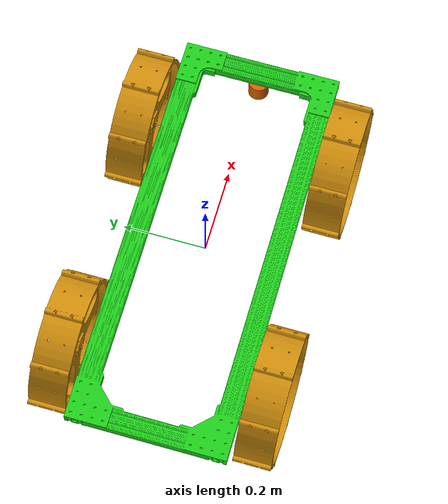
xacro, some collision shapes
<?xml version="1.0"?>
<robot xmlns:xacro="http://www.ros.org/wiki/xacro" name="moony">

<gazebo>
    <plugin name="gazebo_ros_control" filename="libgazebo_ros_control.so">
        <robotNamespace>/moony</robotNamespace>
    </plugin>
</gazebo>

<!-- CONSTANTS -->
<xacro:property name="base_mass" value="4.11" />
<xacro:property name="base_height" value=".03" />
<xacro:property name="wheel_mass" value="2" />
<xacro:property name="wheel_x" value="0.3" />
<xacro:property name="wheel_y" value="${(.38/2)+.04+.01}" />
<!-- y = width/2 of frame + wheel COG to wall + buffer -->
<!-- for XACRO math - SPACES matter -->
<xacro:property name="wheel_z" value="${-0.02 - base_height/2}" />
<xacro:property name="wheel_r" value="${radians(90)}" />
<xacro:property name="wheel_p" value="0" />
<xacro:property name="wheel_y" value="0" />
<xacro:property name="wheel_inertia_ixx" value="0.02" />
<xacro:property name="wheel_inertia_iyy" value="0.02" />
<xacro:property name="wheel_inertia_izz" value="0.04" />
<xacro:property name="wheel_collision_radius" value="0.17" />
<xacro:property name="wheel_collision_length" value="0.09" />
<xacro:property name="wheel_mesh" value="package://moony_description/models/meshes/wheel.dae" />
<xacro:property name="wheel_effort" value="0.1" />
<xacro:property name="wheel_velocity" value="1" />
<xacro:property name="wheel_static_contact_stiffness" value="100000" />
<xacro:property name="wheel_dynamic_contact_stiffness" value="100000" />
<xacro:property name="wheel_static_friction_coeff" value="10" />
<xacro:property name="wheel_dynamic_friction_coeff" value="10" />

<!-- IMPORTS -->
<!-- Import all Gazebo-customization elements, including Gazebo colors -->
  <!-- THIS DID NOT WORK - however it would appear to be -->
  <!-- Import Rviz colors -->

<!-- MACROS -->
<xacro:macro name="individual_wheel" params="num x y r">
   <link name="wheel_${num}_link">
        <inertial>
            <origin rpy="0 0 0" xyz="0 0 0"/>
            <mass value="${wheel_mass}" />
            <inertia ixx="${wheel_inertia_ixx}" ixy="0" ixz="0" iyy="${wheel_inertia_iyy}" iyz="0" izz="${wheel_inertia_izz}"/>
             <!-- values taken from solidworks; the origin is the position of the part
                w.r.t its axes for the second moment of mass values  -->
        </inertial>

        <collision>
            <origin rpy="0 0 0" xyz="0 0 0"/> <!-- pre joint orientation -->
            <geometry>
                <cylinder radius="${wheel_collision_radius}" length="${wheel_collision_length}"/>
            </geometry>
        </collision>

        <visual>
            <origin rpy="0 0 0" xyz="0 0 0"/> <!-- center of the wheel -->
            <geometry>
                <mesh filename="${wheel_mesh}"/>
            </geometry>
        </visual>
    </link>

        <gazebo reference="wheel_${num}_link">
            <kp>100000.0</kp>   <!-- kp: This coefficient sets the static contact stiffness -->
            <kd>100000.0</kd>   <!-- kd: This coefficient sets the dynamic contact stiffness -->
            <mu1>10.0</mu1>     <!-- mu1: The static friction coefficient -->
            <mu2>10.0</mu2>     <!-- mu2: The dynamic friction coefficient. -->
        </gazebo>

    <joint name="wheel_${num}_joint" type="continuous">
        <parent link="base_link"/>
        <child link="wheel_${num}_link"/>
        <origin xyz="${x} ${y} ${wheel_z}" rpy="${r} ${wheel_p} ${wheel_y}"/> <!-- joint location -->
        <limit effort="${wheel_effort}" velocity="${wheel_velocity}"/>
        <axis xyz="0 0 1"/>
    </joint>

    <transmission name="wheel_tran_${num}">
        <type>transmission_interface/SimpleTransmission</type>
        <joint name="wheel_${num}_joint">
            <hardwareInterface>hardware_interface/VelocityJointInterface</hardwareInterface>
        </joint>
        <actuator name="wheel_motor_${num}">
            <hardwareInterface>VelocityJointInterface</hardwareInterface>
            <mechanicalReduction>1</mechanicalReduction>
        </actuator>
    </transmission>
</xacro:macro>

<xacro:macro name="differential_drive" params="prefix left right">
    <gazebo>
    <plugin name="${prefix}_differential_drive_controller" filename="libgazebo_ros_diff_drive.so">

        <!-- Plugin update rate in Hz -->
        <updateRate>50</updateRate>

        <!-- Name of left joint, defaults to `left_joint` -->
        <leftJoint>wheel_${left}_joint</leftJoint>

        <!-- Name of right joint, defaults to `right_joint` -->
        <rightJoint>wheel_${right}_joint</rightJoint>

        <!-- The distance from the center of one wheel to the other, in meters, defaults to 0.34 m -->
        <wheelSeparation>${2 * wheel_y}</wheelSeparation>

        <!-- Diameter of the wheels, in meters, defaults to 0.15 m -->
        <wheelDiameter>${wheel_collision_radius}</wheelDiameter>

        <!-- Wheel acceleration, in rad/s^2, defaults to 0.0 rad/s^2 -->
        <wheelAcceleration>1.0</wheelAcceleration>

        <!-- Maximum torque which the wheels can produce, in Nm, defaults to 5 Nm -->
        <wheelTorque>20</wheelTorque>

        <!-- Topic to receive geometry_msgs/Twist message commands, defaults to `cmd_vel` -->
        <commandTopic>/moony/cmd_vel</commandTopic>
            <!-- use for this is unknown -> /moony/mobile_base_controller/cmd_vel -->

        <!-- Topic to publish nav_msgs/Odometry messages, defaults to `odom` -->
        <odometryTopic>odom</odometryTopic>

        <!-- Odometry frame, defaults to `odom` -->
        <odometryFrame>odom</odometryFrame>

        <!-- Robot frame to calculate odometry from, defaults to `base_footprint` -->
        <robotBaseFrame>base_footprint</robotBaseFrame>

        <!-- Odometry source, 0 for ENCODER, 1 for WORLD, defaults to WORLD -->
        <odometrySource>1</odometrySource>

        <!-- Set to true to publish transforms for the wheel links, defaults to false -->
        <publishWheelTF>false</publishWheelTF>

        <!-- Set to true to publish transforms for the odometry, defaults to true -->
        <publishOdom>true</publishOdom>

        <!-- Set to true to publish sensor_msgs/JointState on /joint_states for the wheel joints, defaults to false -->
        <publishWheelJointState>false</publishWheelJointState>

        <!-- Set to true to swap right and left wheels, defaults to true -->
        <legacyMode>false</legacyMode>
    </plugin>
    </gazebo>
</xacro:macro>

<!-- note: units are meters, kilograms, and radians -->

        <!-- dummy prevents laser from publishing -->

    <link name="base_link">
        <inertial>
            <origin rpy="0 0 0" xyz="0 0 0"/>
            <mass value="${base_mass}" />
            <inertia ixx="0.1" ixy="0" ixz="0" iyy="0.62" iyz="0" izz="0.52"/>
             <!-- values taken from solidworks  -->
        </inertial>
        <collision>
            <origin rpy="0 0 0" xyz="0 0 0"/> <!-- center of the wheel -->
            <geometry>
                <box size="1 .38 ${base_height}"/> -->
            </geometry>
        </collision>
        <visual>
            <origin rpy="0 0 0" xyz="0 0 0"/>
            <geometry>
                <mesh filename="package://moony_description/models/meshes/frame.dae"/>
            </geometry>
        </visual>
    </link>

   <xacro:individual_wheel num="1" x="${1.0 * wheel_x}" y="${1.0 * .24}" r="${-1 * wheel_r}"/>
   <xacro:individual_wheel num="2" x="${-1.0 * wheel_x}" y="${1.0 * .24}" r="${-1 * wheel_r}"/>
   <xacro:individual_wheel num="3" x="${1.0 * wheel_x}" y="${-1.0 * .24}" r="${1 * wheel_r}"/>
   <xacro:individual_wheel num="4" x="${-1.0 * wheel_x}" y="${-1.0 * .24}" r="${1 * wheel_r}"/>

   <xacro:differential_drive prefix="front" left="1" right="3"/>
   <xacro:differential_drive prefix="back" left="2" right="4"/>

     <!-- Base Link -->
  <link name="lidar_link">
    <collision>
      <origin xyz="0 0 ${.05/2}" rpy="0 0 0"/>
      <geometry>
        <cylinder radius="${0.025}" length=".05"/>
      </geometry>
    </collision>

    <visual>
      <origin xyz="0 0 0" rpy="0 0 0"/>
      <geometry>
        <mesh filename="package://moony_description/models/meshes/lidar.dae"/>
      </geometry>
    </visual>

    <inertial>
      <origin xyz="0 0 0" rpy="0 0 0"/>
      <mass value=".077"/>
      <inertia
        ixx=".00007" ixy="0.0" ixz="0.0"
        iyy=".00003" iyz="0.0"
        izz=".00008"/>
    </inertial>
  </link>

    <gazebo reference="lidar_link">
        <kp>100000.0</kp>   <!-- kp: This coefficient sets the static contact stiffness -->
        <kd>100000.0</kd>   <!-- kd: This coefficient sets the dynamic contact stiffness -->
        <mu1>10.0</mu1>     <!-- mu1: The static friction coefficient -->
        <mu2>10.0</mu2>     <!-- mu2: The dynamic friction coefficient. -->
    </gazebo>

    <joint name="lidar_joint" type="fixed">
        <parent link="base_link"/>
        <child link="lidar_link"/>
        <origin xyz=".47 0 ${-0.015 - 0.005/2 -0.001}" rpy="${radians(180)} 0 0"/> <!-- joint location -->
    </joint>

<!-- lidar sensor -->
  <gazebo reference="lidar_link">
    <sensor type="ray" name="front_rplidar_sensor">
      <pose>0 0 0 0 0 0</pose>
      <visualize>true</visualize>
      <update_rate>40</update_rate>
      <ray>
        <scan>
          <horizontal>
            <samples>720</samples>
            <resolution>1</resolution>
            <min_angle>${-radians(360)}</min_angle>
            <max_angle>${radians(360)}</max_angle>
          </horizontal>
        </scan>
        <range>
          <min>0.10</min>
          <max>30.0</max>
          <resolution>0.01</resolution>
        </range>
        <noise>
          <type>gaussian</type>
          <mean>0.0</mean>
          <stddev>0.01</stddev>
        </noise>
      </ray>
      <plugin name="gazebo_ros_front_rplidar_controller" filename="libgazebo_ros_laser.so">
        <topicName>/moony/laser/scan</topicName>
        <frameName>lidar_link</frameName>
      </plugin>
    </sensor>
  </gazebo>

</robot>
